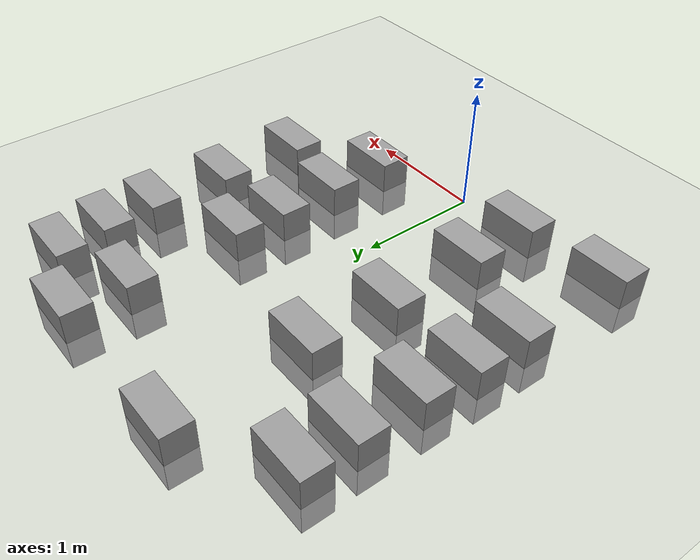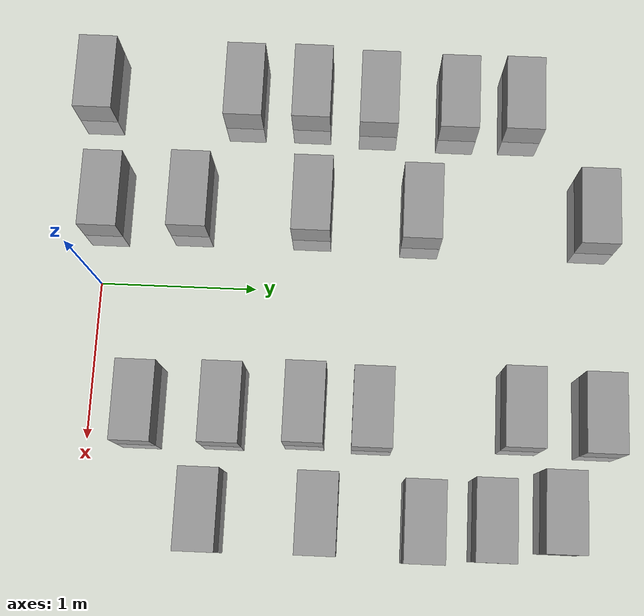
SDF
<sdf version="1.7">
 <world name="default">
  <model name="ground_plane">
   <static>1</static>
   <link name="link">
    <collision name="collision">
     <geometry><plane><normal>0 0 1</normal><size>100 100</size></plane></geometry>
     <surface>
      <contact><collide_bitmask>65535</collide_bitmask></contact>
      <friction><ode><mu>100</mu><mu2>50</mu2></ode></friction>
     </surface>
    </collision>
    <visual name="visual">
     <cast_shadows>0</cast_shadows>
     <geometry><plane><normal>0 0 1</normal><size>100 100</size></plane></geometry>
     <material>
      <script><uri>file://media/materials/scripts/gazebo.material</uri><name>Gazebo/Grey</name></script>
     </material>
    </visual>
   </link>
  </model>
  <model name="box_race_car_clone_20_clone_2">
   <link name="link">
    <inertial>
     <mass>10</mass>
     <inertia>
      <ixx>0.260417</ixx>
      <ixy>0</ixy>
      <ixz>0</ixz>
      <iyy>0.416667</iyy>
      <iyz>0</iyz>
      <izz>0.260417</izz>
     </inertia>
    </inertial>
    <visual name="visual">
     <geometry><box><size>0.5 0.25 0.5</size></box></geometry>
     <material>
      <script><name>Gazebo/Grey</name><uri>file://media/materials/scripts/gazebo.material</uri></script>
      <shader type="pixel"><normal_map>__default__</normal_map></shader>
      <ambient>0.3 0.3 0.3 1</ambient>
      <diffuse>0.7 0.7 0.7 1</diffuse>
      <specular>0.01 0.01 0.01 1</specular>
      <emissive>0 0 0 1</emissive>
     </material>
    </visual>
    <collision name="collision">
     <geometry><box><size>0.5 0.25 0.5</size></box></geometry>
     <surface>
      <friction>
       <ode><mu>1</mu><mu2>1</mu2><fdir1>0 0 0</fdir1><slip1>0</slip1><slip2>0</slip2></ode>
       <torsional>
        <coefficient>1</coefficient>
        <patch_radius>0</patch_radius>
        <surface_radius>0</surface_radius>
        <use_patch_radius>1</use_patch_radius>
        <ode><slip>0</slip></ode>
       </torsional>
      </friction>
      <bounce><restitution_coefficient>0</restitution_coefficient><threshold>1e+06</threshold></bounce>
      <contact>
       <collide_without_contact>0</collide_without_contact>
       <collide_without_contact_bitmask>1</collide_without_contact_bitmask>
       <collide_bitmask>1</collide_bitmask>
       <ode>
        <soft_cfm>0</soft_cfm>
        <soft_erp>0.2</soft_erp>
        <kp>1e+13</kp>
        <kd>1</kd>
        <max_vel>0.01</max_vel>
        <min_depth>0</min_depth>
       </ode>
       <bullet>
        <split_impulse>1</split_impulse>
        <split_impulse_penetration_threshold>-0.01</split_impulse_penetration_threshold>
        <soft_cfm>0</soft_cfm>
        <soft_erp>0.2</soft_erp>
        <kp>1e+13</kp>
        <kd>1</kd>
       </bullet>
      </contact>
     </surface>
    </collision>
   </link>
   <static>0</static>
   <pose>-0.568914 -0.016452 0 0 -0 0</pose>
  </model>
  <model name="box_race_car_clone_20_clone_3">
   <link name="link">
    <inertial>
     <mass>10</mass>
     <inertia>
      <ixx>0.260417</ixx>
      <ixy>0</ixy>
      <ixz>0</ixz>
      <iyy>0.416667</iyy>
      <iyz>0</iyz>
      <izz>0.260417</izz>
     </inertia>
    </inertial>
    <visual name="visual">
     <geometry><box><size>0.5 0.25 0.5</size></box></geometry>
     <material>
      <script><name>Gazebo/Grey</name><uri>file://media/materials/scripts/gazebo.material</uri></script>
      <shader type="pixel"><normal_map>__default__</normal_map></shader>
      <ambient>0.3 0.3 0.3 1</ambient>
      <diffuse>0.7 0.7 0.7 1</diffuse>
      <specular>0.01 0.01 0.01 1</specular>
      <emissive>0 0 0 1</emissive>
     </material>
    </visual>
    <collision name="collision">
     <geometry><box><size>0.5 0.25 0.5</size></box></geometry>
     <surface>
      <friction>
       <ode><mu>1</mu><mu2>1</mu2><fdir1>0 0 0</fdir1><slip1>0</slip1><slip2>0</slip2></ode>
       <torsional>
        <coefficient>1</coefficient>
        <patch_radius>0</patch_radius>
        <surface_radius>0</surface_radius>
        <use_patch_radius>1</use_patch_radius>
        <ode><slip>0</slip></ode>
       </torsional>
      </friction>
      <bounce><restitution_coefficient>0</restitution_coefficient><threshold>1e+06</threshold></bounce>
      <contact>
       <collide_without_contact>0</collide_without_contact>
       <collide_without_contact_bitmask>1</collide_without_contact_bitmask>
       <collide_bitmask>1</collide_bitmask>
       <ode>
        <soft_cfm>0</soft_cfm>
        <soft_erp>0.2</soft_erp>
        <kp>1e+13</kp>
        <kd>1</kd>
        <max_vel>0.01</max_vel>
        <min_depth>0</min_depth>
       </ode>
       <bullet>
        <split_impulse>1</split_impulse>
        <split_impulse_penetration_threshold>-0.01</split_impulse_penetration_threshold>
        <soft_cfm>0</soft_cfm>
        <soft_erp>0.2</soft_erp>
        <kp>1e+13</kp>
        <kd>1</kd>
       </bullet>
      </contact>
     </surface>
    </collision>
   </link>
   <static>0</static>
   <pose>-0.590353 0.546629 0 0 -0 0</pose>
  </model>
  <model name="box_race_car_clone_20_clone_4">
   <link name="link">
    <inertial>
     <mass>10</mass>
     <inertia>
      <ixx>0.260417</ixx>
      <ixy>0</ixy>
      <ixz>0</ixz>
      <iyy>0.416667</iyy>
      <iyz>0</iyz>
      <izz>0.260417</izz>
     </inertia>
    </inertial>
    <visual name="visual">
     <geometry><box><size>0.5 0.25 0.5</size></box></geometry>
     <material>
      <script><name>Gazebo/Grey</name><uri>file://media/materials/scripts/gazebo.material</uri></script>
      <shader type="pixel"><normal_map>__default__</normal_map></shader>
      <ambient>0.3 0.3 0.3 1</ambient>
      <diffuse>0.7 0.7 0.7 1</diffuse>
      <specular>0.01 0.01 0.01 1</specular>
      <emissive>0 0 0 1</emissive>
     </material>
    </visual>
    <collision name="collision">
     <geometry><box><size>0.5 0.25 0.5</size></box></geometry>
     <surface>
      <friction>
       <ode><mu>1</mu><mu2>1</mu2><fdir1>0 0 0</fdir1><slip1>0</slip1><slip2>0</slip2></ode>
       <torsional>
        <coefficient>1</coefficient>
        <patch_radius>0</patch_radius>
        <surface_radius>0</surface_radius>
        <use_patch_radius>1</use_patch_radius>
        <ode><slip>0</slip></ode>
       </torsional>
      </friction>
      <bounce><restitution_coefficient>0</restitution_coefficient><threshold>1e+06</threshold></bounce>
      <contact>
       <collide_without_contact>0</collide_without_contact>
       <collide_without_contact_bitmask>1</collide_without_contact_bitmask>
       <collide_bitmask>1</collide_bitmask>
       <ode>
        <soft_cfm>0</soft_cfm>
        <soft_erp>0.2</soft_erp>
        <kp>1e+13</kp>
        <kd>1</kd>
        <max_vel>0.01</max_vel>
        <min_depth>0</min_depth>
       </ode>
       <bullet>
        <split_impulse>1</split_impulse>
        <split_impulse_penetration_threshold>-0.01</split_impulse_penetration_threshold>
        <soft_cfm>0</soft_cfm>
        <soft_erp>0.2</soft_erp>
        <kp>1e+13</kp>
        <kd>1</kd>
       </bullet>
      </contact>
     </surface>
    </collision>
   </link>
   <static>0</static>
   <pose>-0.594673 1.33607 0 0 -0 0</pose>
  </model>
  <model name="box_race_car_clone_20_clone_5">
   <link name="link">
    <inertial>
     <mass>10</mass>
     <inertia>
      <ixx>0.260417</ixx>
      <ixy>0</ixy>
      <ixz>0</ixz>
      <iyy>0.416667</iyy>
      <iyz>0</iyz>
      <izz>0.260417</izz>
     </inertia>
    </inertial>
    <visual name="visual">
     <geometry><box><size>0.5 0.25 0.5</size></box></geometry>
     <material>
      <script><name>Gazebo/Grey</name><uri>file://media/materials/scripts/gazebo.material</uri></script>
      <shader type="pixel"><normal_map>__default__</normal_map></shader>
      <ambient>0.3 0.3 0.3 1</ambient>
      <diffuse>0.7 0.7 0.7 1</diffuse>
      <specular>0.01 0.01 0.01 1</specular>
      <emissive>0 0 0 1</emissive>
     </material>
    </visual>
    <collision name="collision">
     <geometry><box><size>0.5 0.25 0.5</size></box></geometry>
     <surface>
      <friction>
       <ode><mu>1</mu><mu2>1</mu2><fdir1>0 0 0</fdir1><slip1>0</slip1><slip2>0</slip2></ode>
       <torsional>
        <coefficient>1</coefficient>
        <patch_radius>0</patch_radius>
        <surface_radius>0</surface_radius>
        <use_patch_radius>1</use_patch_radius>
        <ode><slip>0</slip></ode>
       </torsional>
      </friction>
      <bounce><restitution_coefficient>0</restitution_coefficient><threshold>1e+06</threshold></bounce>
      <contact>
       <collide_without_contact>0</collide_without_contact>
       <collide_without_contact_bitmask>1</collide_without_contact_bitmask>
       <collide_bitmask>1</collide_bitmask>
       <ode>
        <soft_cfm>0</soft_cfm>
        <soft_erp>0.2</soft_erp>
        <kp>1e+13</kp>
        <kd>1</kd>
        <max_vel>0.01</max_vel>
        <min_depth>0</min_depth>
       </ode>
       <bullet>
        <split_impulse>1</split_impulse>
        <split_impulse_penetration_threshold>-0.01</split_impulse_penetration_threshold>
        <soft_cfm>0</soft_cfm>
        <soft_erp>0.2</soft_erp>
        <kp>1e+13</kp>
        <kd>1</kd>
       </bullet>
      </contact>
     </surface>
    </collision>
   </link>
   <static>0</static>
   <pose>-0.571957 2.04573 0 0 -0 0</pose>
  </model>
  <model name="box_race_car_clone_20_clone_6">
   <link name="link">
    <inertial>
     <mass>10</mass>
     <inertia>
      <ixx>0.260417</ixx>
      <ixy>0</ixy>
      <ixz>0</ixz>
      <iyy>0.416667</iyy>
      <iyz>0</iyz>
      <izz>0.260417</izz>
     </inertia>
    </inertial>
    <visual name="visual">
     <geometry><box><size>0.5 0.25 0.5</size></box></geometry>
     <material>
      <script><name>Gazebo/Grey</name><uri>file://media/materials/scripts/gazebo.material</uri></script>
      <shader type="pixel"><normal_map>__default__</normal_map></shader>
      <ambient>0.3 0.3 0.3 1</ambient>
      <diffuse>0.7 0.7 0.7 1</diffuse>
      <specular>0.01 0.01 0.01 1</specular>
      <emissive>0 0 0 1</emissive>
     </material>
    </visual>
    <collision name="collision">
     <geometry><box><size>0.5 0.25 0.5</size></box></geometry>
     <surface>
      <friction>
       <ode><mu>1</mu><mu2>1</mu2><fdir1>0 0 0</fdir1><slip1>0</slip1><slip2>0</slip2></ode>
       <torsional>
        <coefficient>1</coefficient>
        <patch_radius>0</patch_radius>
        <surface_radius>0</surface_radius>
        <use_patch_radius>1</use_patch_radius>
        <ode><slip>0</slip></ode>
       </torsional>
      </friction>
      <bounce><restitution_coefficient>0</restitution_coefficient><threshold>1e+06</threshold></bounce>
      <contact>
       <collide_without_contact>0</collide_without_contact>
       <collide_without_contact_bitmask>1</collide_without_contact_bitmask>
       <collide_bitmask>1</collide_bitmask>
       <ode>
        <soft_cfm>0</soft_cfm>
        <soft_erp>0.2</soft_erp>
        <kp>1e+13</kp>
        <kd>1</kd>
        <max_vel>0.01</max_vel>
        <min_depth>0</min_depth>
       </ode>
       <bullet>
        <split_impulse>1</split_impulse>
        <split_impulse_penetration_threshold>-0.01</split_impulse_penetration_threshold>
        <soft_cfm>0</soft_cfm>
        <soft_erp>0.2</soft_erp>
        <kp>1e+13</kp>
        <kd>1</kd>
       </bullet>
      </contact>
     </surface>
    </collision>
   </link>
   <static>0</static>
   <pose>-0.585268 3.17093 0 0 -0 0</pose>
  </model>
  <model name="box_race_car_clone_20_clone_7">
   <link name="link">
    <inertial>
     <mass>10</mass>
     <inertia>
      <ixx>0.260417</ixx>
      <ixy>0</ixy>
      <ixz>0</ixz>
      <iyy>0.416667</iyy>
      <iyz>0</iyz>
      <izz>0.260417</izz>
     </inertia>
    </inertial>
    <visual name="visual">
     <geometry><box><size>0.5 0.25 0.5</size></box></geometry>
     <material>
      <script><name>Gazebo/Grey</name><uri>file://media/materials/scripts/gazebo.material</uri></script>
      <shader type="pixel"><normal_map>__default__</normal_map></shader>
      <ambient>0.3 0.3 0.3 1</ambient>
      <diffuse>0.7 0.7 0.7 1</diffuse>
      <specular>0.01 0.01 0.01 1</specular>
      <emissive>0 0 0 1</emissive>
     </material>
    </visual>
    <collision name="collision">
     <geometry><box><size>0.5 0.25 0.5</size></box></geometry>
     <surface>
      <friction>
       <ode><mu>1</mu><mu2>1</mu2><fdir1>0 0 0</fdir1><slip1>0</slip1><slip2>0</slip2></ode>
       <torsional>
        <coefficient>1</coefficient>
        <patch_radius>0</patch_radius>
        <surface_radius>0</surface_radius>
        <use_patch_radius>1</use_patch_radius>
        <ode><slip>0</slip></ode>
       </torsional>
      </friction>
      <bounce><restitution_coefficient>0</restitution_coefficient><threshold>1e+06</threshold></bounce>
      <contact>
       <collide_without_contact>0</collide_without_contact>
       <collide_without_contact_bitmask>1</collide_without_contact_bitmask>
       <collide_bitmask>1</collide_bitmask>
       <ode>
        <soft_cfm>0</soft_cfm>
        <soft_erp>0.2</soft_erp>
        <kp>1e+13</kp>
        <kd>1</kd>
        <max_vel>0.01</max_vel>
        <min_depth>0</min_depth>
       </ode>
       <bullet>
        <split_impulse>1</split_impulse>
        <split_impulse_penetration_threshold>-0.01</split_impulse_penetration_threshold>
        <soft_cfm>0</soft_cfm>
        <soft_erp>0.2</soft_erp>
        <kp>1e+13</kp>
        <kd>1</kd>
       </bullet>
      </contact>
     </surface>
    </collision>
   </link>
   <static>0</static>
   <pose>-1.33065 2.69144 0 0 -0 0</pose>
  </model>
  <model name="box_race_car_clone_20_clone_8">
   <link name="link">
    <inertial>
     <mass>10</mass>
     <inertia>
      <ixx>0.260417</ixx>
      <ixy>0</ixy>
      <ixz>0</ixz>
      <iyy>0.416667</iyy>
      <iyz>0</iyz>
      <izz>0.260417</izz>
     </inertia>
    </inertial>
    <visual name="visual">
     <geometry><box><size>0.5 0.25 0.5</size></box></geometry>
     <material>
      <script><name>Gazebo/Grey</name><uri>file://media/materials/scripts/gazebo.material</uri></script>
      <shader type="pixel"><normal_map>__default__</normal_map></shader>
      <ambient>0.3 0.3 0.3 1</ambient>
      <diffuse>0.7 0.7 0.7 1</diffuse>
      <specular>0.01 0.01 0.01 1</specular>
      <emissive>0 0 0 1</emissive>
     </material>
    </visual>
    <collision name="collision">
     <geometry><box><size>0.5 0.25 0.5</size></box></geometry>
     <surface>
      <friction>
       <ode><mu>1</mu><mu2>1</mu2><fdir1>0 0 0</fdir1><slip1>0</slip1><slip2>0</slip2></ode>
       <torsional>
        <coefficient>1</coefficient>
        <patch_radius>0</patch_radius>
        <surface_radius>0</surface_radius>
        <use_patch_radius>1</use_patch_radius>
        <ode><slip>0</slip></ode>
       </torsional>
      </friction>
      <bounce><restitution_coefficient>0</restitution_coefficient><threshold>1e+06</threshold></bounce>
      <contact>
       <collide_without_contact>0</collide_without_contact>
       <collide_without_contact_bitmask>1</collide_without_contact_bitmask>
       <collide_bitmask>1</collide_bitmask>
       <ode>
        <soft_cfm>0</soft_cfm>
        <soft_erp>0.2</soft_erp>
        <kp>1e+13</kp>
        <kd>1</kd>
        <max_vel>0.01</max_vel>
        <min_depth>0</min_depth>
       </ode>
       <bullet>
        <split_impulse>1</split_impulse>
        <split_impulse_penetration_threshold>-0.01</split_impulse_penetration_threshold>
        <soft_cfm>0</soft_cfm>
        <soft_erp>0.2</soft_erp>
        <kp>1e+13</kp>
        <kd>1</kd>
       </bullet>
      </contact>
     </surface>
    </collision>
   </link>
   <static>0</static>
   <pose>-1.3245 2.26701 0 0 -0 0</pose>
  </model>
  <model name="box_race_car_clone_20_clone_9">
   <link name="link">
    <inertial>
     <mass>10</mass>
     <inertia>
      <ixx>0.260417</ixx>
      <ixy>0</ixy>
      <ixz>0</ixz>
      <iyy>0.416667</iyy>
      <iyz>0</iyz>
      <izz>0.260417</izz>
     </inertia>
    </inertial>
    <visual name="visual">
     <geometry><box><size>0.5 0.25 0.5</size></box></geometry>
     <material>
      <script><name>Gazebo/Grey</name><uri>file://media/materials/scripts/gazebo.material</uri></script>
      <shader type="pixel"><normal_map>__default__</normal_map></shader>
      <ambient>0.3 0.3 0.3 1</ambient>
      <diffuse>0.7 0.7 0.7 1</diffuse>
      <specular>0.01 0.01 0.01 1</specular>
      <emissive>0 0 0 1</emissive>
     </material>
    </visual>
    <collision name="collision">
     <geometry><box><size>0.5 0.25 0.5</size></box></geometry>
     <surface>
      <friction>
       <ode><mu>1</mu><mu2>1</mu2><fdir1>0 0 0</fdir1><slip1>0</slip1><slip2>0</slip2></ode>
       <torsional>
        <coefficient>1</coefficient>
        <patch_radius>0</patch_radius>
        <surface_radius>0</surface_radius>
        <use_patch_radius>1</use_patch_radius>
        <ode><slip>0</slip></ode>
       </torsional>
      </friction>
      <bounce><restitution_coefficient>0</restitution_coefficient><threshold>1e+06</threshold></bounce>
      <contact>
       <collide_without_contact>0</collide_without_contact>
       <collide_without_contact_bitmask>1</collide_without_contact_bitmask>
       <collide_bitmask>1</collide_bitmask>
       <ode>
        <soft_cfm>0</soft_cfm>
        <soft_erp>0.2</soft_erp>
        <kp>1e+13</kp>
        <kd>1</kd>
        <max_vel>0.01</max_vel>
        <min_depth>0</min_depth>
       </ode>
       <bullet>
        <split_impulse>1</split_impulse>
        <split_impulse_penetration_threshold>-0.01</split_impulse_penetration_threshold>
        <soft_cfm>0</soft_cfm>
        <soft_erp>0.2</soft_erp>
        <kp>1e+13</kp>
        <kd>1</kd>
       </bullet>
      </contact>
     </surface>
    </collision>
   </link>
   <static>0</static>
   <pose>-1.33137 1.74434 0 0 -0 0</pose>
  </model>
  <model name="box_race_car_clone_20_clone_10">
   <link name="link">
    <inertial>
     <mass>10</mass>
     <inertia>
      <ixx>0.260417</ixx>
      <ixy>0</ixy>
      <ixz>0</ixz>
      <iyy>0.416667</iyy>
      <iyz>0</iyz>
      <izz>0.260417</izz>
     </inertia>
    </inertial>
    <visual name="visual">
     <geometry><box><size>0.5 0.25 0.5</size></box></geometry>
     <material>
      <script><name>Gazebo/Grey</name><uri>file://media/materials/scripts/gazebo.material</uri></script>
      <shader type="pixel"><normal_map>__default__</normal_map></shader>
      <ambient>0.3 0.3 0.3 1</ambient>
      <diffuse>0.7 0.7 0.7 1</diffuse>
      <specular>0.01 0.01 0.01 1</specular>
      <emissive>0 0 0 1</emissive>
     </material>
    </visual>
    <collision name="collision">
     <geometry><box><size>0.5 0.25 0.5</size></box></geometry>
     <surface>
      <friction>
       <ode><mu>1</mu><mu2>1</mu2><fdir1>0 0 0</fdir1><slip1>0</slip1><slip2>0</slip2></ode>
       <torsional>
        <coefficient>1</coefficient>
        <patch_radius>0</patch_radius>
        <surface_radius>0</surface_radius>
        <use_patch_radius>1</use_patch_radius>
        <ode><slip>0</slip></ode>
       </torsional>
      </friction>
      <bounce><restitution_coefficient>0</restitution_coefficient><threshold>1e+06</threshold></bounce>
      <contact>
       <collide_without_contact>0</collide_without_contact>
       <collide_without_contact_bitmask>1</collide_without_contact_bitmask>
       <collide_bitmask>1</collide_bitmask>
       <ode>
        <soft_cfm>0</soft_cfm>
        <soft_erp>0.2</soft_erp>
        <kp>1e+13</kp>
        <kd>1</kd>
        <max_vel>0.01</max_vel>
        <min_depth>0</min_depth>
       </ode>
       <bullet>
        <split_impulse>1</split_impulse>
        <split_impulse_penetration_threshold>-0.01</split_impulse_penetration_threshold>
        <soft_cfm>0</soft_cfm>
        <soft_erp>0.2</soft_erp>
        <kp>1e+13</kp>
        <kd>1</kd>
       </bullet>
      </contact>
     </surface>
    </collision>
   </link>
   <static>0</static>
   <pose>-1.35542 1.30114 0 0 -0 0</pose>
  </model>
  <model name="box_race_car_clone_20_clone_11">
   <link name="link">
    <inertial>
     <mass>10</mass>
     <inertia>
      <ixx>0.260417</ixx>
      <ixy>0</ixy>
      <ixz>0</ixz>
      <iyy>0.416667</iyy>
      <iyz>0</iyz>
      <izz>0.260417</izz>
     </inertia>
    </inertial>
    <visual name="visual">
     <geometry><box><size>0.5 0.25 0.5</size></box></geometry>
     <material>
      <script><name>Gazebo/Grey</name><uri>file://media/materials/scripts/gazebo.material</uri></script>
      <shader type="pixel"><normal_map>__default__</normal_map></shader>
      <ambient>0.3 0.3 0.3 1</ambient>
      <diffuse>0.7 0.7 0.7 1</diffuse>
      <specular>0.01 0.01 0.01 1</specular>
      <emissive>0 0 0 1</emissive>
     </material>
    </visual>
    <collision name="collision">
     <geometry><box><size>0.5 0.25 0.5</size></box></geometry>
     <surface>
      <friction>
       <ode><mu>1</mu><mu2>1</mu2><fdir1>0 0 0</fdir1><slip1>0</slip1><slip2>0</slip2></ode>
       <torsional>
        <coefficient>1</coefficient>
        <patch_radius>0</patch_radius>
        <surface_radius>0</surface_radius>
        <use_patch_radius>1</use_patch_radius>
        <ode><slip>0</slip></ode>
       </torsional>
      </friction>
      <bounce><restitution_coefficient>0</restitution_coefficient><threshold>1e+06</threshold></bounce>
      <contact>
       <collide_without_contact>0</collide_without_contact>
       <collide_without_contact_bitmask>1</collide_without_contact_bitmask>
       <collide_bitmask>1</collide_bitmask>
       <ode>
        <soft_cfm>0</soft_cfm>
        <soft_erp>0.2</soft_erp>
        <kp>1e+13</kp>
        <kd>1</kd>
        <max_vel>0.01</max_vel>
        <min_depth>0</min_depth>
       </ode>
       <bullet>
        <split_impulse>1</split_impulse>
        <split_impulse_penetration_threshold>-0.01</split_impulse_penetration_threshold>
        <soft_cfm>0</soft_cfm>
        <soft_erp>0.2</soft_erp>
        <kp>1e+13</kp>
        <kd>1</kd>
       </bullet>
      </contact>
     </surface>
    </collision>
   </link>
   <static>0</static>
   <pose>-1.34991 0.857 0 0 -0 0</pose>
  </model>
  <model name="box_race_car_clone_20_clone_12">
   <link name="link">
    <inertial>
     <mass>10</mass>
     <inertia>
      <ixx>0.260417</ixx>
      <ixy>0</ixy>
      <ixz>0</ixz>
      <iyy>0.416667</iyy>
      <iyz>0</iyz>
      <izz>0.260417</izz>
     </inertia>
    </inertial>
    <visual name="visual">
     <geometry><box><size>0.5 0.25 0.5</size></box></geometry>
     <material>
      <script><name>Gazebo/Grey</name><uri>file://media/materials/scripts/gazebo.material</uri></script>
      <shader type="pixel"><normal_map>__default__</normal_map></shader>
      <ambient>0.3 0.3 0.3 1</ambient>
      <diffuse>0.7 0.7 0.7 1</diffuse>
      <specular>0.01 0.01 0.01 1</specular>
      <emissive>0 0 0 1</emissive>
     </material>
    </visual>
    <collision name="collision">
     <geometry><box><size>0.5 0.25 0.5</size></box></geometry>
     <surface>
      <friction>
       <ode><mu>1</mu><mu2>1</mu2><fdir1>0 0 0</fdir1><slip1>0</slip1><slip2>0</slip2></ode>
       <torsional>
        <coefficient>1</coefficient>
        <patch_radius>0</patch_radius>
        <surface_radius>0</surface_radius>
        <use_patch_radius>1</use_patch_radius>
        <ode><slip>0</slip></ode>
       </torsional>
      </friction>
      <bounce><restitution_coefficient>0</restitution_coefficient><threshold>1e+06</threshold></bounce>
      <contact>
       <collide_without_contact>0</collide_without_contact>
       <collide_without_contact_bitmask>1</collide_without_contact_bitmask>
       <collide_bitmask>1</collide_bitmask>
       <ode>
        <soft_cfm>0</soft_cfm>
        <soft_erp>0.2</soft_erp>
        <kp>1e+13</kp>
        <kd>1</kd>
        <max_vel>0.01</max_vel>
        <min_depth>0</min_depth>
       </ode>
       <bullet>
        <split_impulse>1</split_impulse>
        <split_impulse_penetration_threshold>-0.01</split_impulse_penetration_threshold>
        <soft_cfm>0</soft_cfm>
        <soft_erp>0.2</soft_erp>
        <kp>1e+13</kp>
        <kd>1</kd>
       </bullet>
      </contact>
     </surface>
    </collision>
   </link>
   <static>0</static>
   <pose>-1.36143 -0.119349 0 0 -0 0</pose>
  </model>
  <model name="box_race_car_clone_20_clone_23">
   <link name="link">
    <inertial>
     <mass>10</mass>
     <inertia>
      <ixx>0.260417</ixx>
      <ixy>0</ixy>
      <ixz>0</ixz>
      <iyy>0.416667</iyy>
      <iyz>0</iyz>
      <izz>0.260417</izz>
     </inertia>
    </inertial>
    <visual name="visual">
     <geometry><box><size>0.5 0.25 0.5</size></box></geometry>
     <material>
      <script><name>Gazebo/Grey</name><uri>file://media/materials/scripts/gazebo.material</uri></script>
      <shader type="pixel"><normal_map>__default__</normal_map></shader>
      <ambient>0.3 0.3 0.3 1</ambient>
      <diffuse>0.7 0.7 0.7 1</diffuse>
      <specular>0.01 0.01 0.01 1</specular>
      <emissive>0 0 0 1</emissive>
     </material>
    </visual>
    <collision name="collision">
     <geometry><box><size>0.5 0.25 0.5</size></box></geometry>
     <surface>
      <friction>
       <ode><mu>1</mu><mu2>1</mu2><fdir1>0 0 0</fdir1><slip1>0</slip1><slip2>0</slip2></ode>
       <torsional>
        <coefficient>1</coefficient>
        <patch_radius>0</patch_radius>
        <surface_radius>0</surface_radius>
        <use_patch_radius>1</use_patch_radius>
        <ode><slip>0</slip></ode>
       </torsional>
      </friction>
      <bounce><restitution_coefficient>0</restitution_coefficient><threshold>1e+06</threshold></bounce>
      <contact>
       <collide_without_contact>0</collide_without_contact>
       <collide_without_contact_bitmask>1</collide_without_contact_bitmask>
       <collide_bitmask>1</collide_bitmask>
       <ode>
        <soft_cfm>0</soft_cfm>
        <soft_erp>0.2</soft_erp>
        <kp>1e+13</kp>
        <kd>1</kd>
        <max_vel>0.01</max_vel>
        <min_depth>0</min_depth>
       </ode>
       <bullet>
        <split_impulse>1</split_impulse>
        <split_impulse_penetration_threshold>-0.01</split_impulse_penetration_threshold>
        <soft_cfm>0</soft_cfm>
        <soft_erp>0.2</soft_erp>
        <kp>1e+13</kp>
        <kd>1</kd>
       </bullet>
      </contact>
     </surface>
    </collision>
   </link>
   <static>0</static>
   <pose>0.773447 0.305808 0 0 -0 0</pose>
  </model>
  <model name="box_race_car_clone_20_clone_24">
   <link name="link">
    <inertial>
     <mass>10</mass>
     <inertia>
      <ixx>0.260417</ixx>
      <ixy>0</ixy>
      <ixz>0</ixz>
      <iyy>0.416667</iyy>
      <iyz>0</iyz>
      <izz>0.260417</izz>
     </inertia>
    </inertial>
    <visual name="visual">
     <geometry><box><size>0.5 0.25 0.5</size></box></geometry>
     <material>
      <script><name>Gazebo/Grey</name><uri>file://media/materials/scripts/gazebo.material</uri></script>
      <shader type="pixel"><normal_map>__default__</normal_map></shader>
      <ambient>0.3 0.3 0.3 1</ambient>
      <diffuse>0.7 0.7 0.7 1</diffuse>
      <specular>0.01 0.01 0.01 1</specular>
      <emissive>0 0 0 1</emissive>
     </material>
    </visual>
    <collision name="collision">
     <geometry><box><size>0.5 0.25 0.5</size></box></geometry>
     <surface>
      <friction>
       <ode><mu>1</mu><mu2>1</mu2><fdir1>0 0 0</fdir1><slip1>0</slip1><slip2>0</slip2></ode>
       <torsional>
        <coefficient>1</coefficient>
        <patch_radius>0</patch_radius>
        <surface_radius>0</surface_radius>
        <use_patch_radius>1</use_patch_radius>
        <ode><slip>0</slip></ode>
       </torsional>
      </friction>
      <bounce><restitution_coefficient>0</restitution_coefficient><threshold>1e+06</threshold></bounce>
      <contact>
       <collide_without_contact>0</collide_without_contact>
       <collide_without_contact_bitmask>1</collide_without_contact_bitmask>
       <collide_bitmask>1</collide_bitmask>
       <ode>
        <soft_cfm>0</soft_cfm>
        <soft_erp>0.2</soft_erp>
        <kp>1e+13</kp>
        <kd>1</kd>
        <max_vel>0.01</max_vel>
        <min_depth>0</min_depth>
       </ode>
       <bullet>
        <split_impulse>1</split_impulse>
        <split_impulse_penetration_threshold>-0.01</split_impulse_penetration_threshold>
        <soft_cfm>0</soft_cfm>
        <soft_erp>0.2</soft_erp>
        <kp>1e+13</kp>
        <kd>1</kd>
       </bullet>
      </contact>
     </surface>
    </collision>
   </link>
   <static>0</static>
   <pose>0.760915 0.839055 0 0 -0 0</pose>
  </model>
  <model name="box_race_car_clone_20_clone_25">
   <link name="link">
    <inertial>
     <mass>10</mass>
     <inertia>
      <ixx>0.260417</ixx>
      <ixy>0</ixy>
      <ixz>0</ixz>
      <iyy>0.416667</iyy>
      <iyz>0</iyz>
      <izz>0.260417</izz>
     </inertia>
    </inertial>
    <visual name="visual">
     <geometry><box><size>0.5 0.25 0.5</size></box></geometry>
     <material>
      <script><name>Gazebo/Grey</name><uri>file://media/materials/scripts/gazebo.material</uri></script>
      <shader type="pixel"><normal_map>__default__</normal_map></shader>
      <ambient>0.3 0.3 0.3 1</ambient>
      <diffuse>0.7 0.7 0.7 1</diffuse>
      <specular>0.01 0.01 0.01 1</specular>
      <emissive>0 0 0 1</emissive>
     </material>
    </visual>
    <collision name="collision">
     <geometry><box><size>0.5 0.25 0.5</size></box></geometry>
     <surface>
      <friction>
       <ode><mu>1</mu><mu2>1</mu2><fdir1>0 0 0</fdir1><slip1>0</slip1><slip2>0</slip2></ode>
       <torsional>
        <coefficient>1</coefficient>
        <patch_radius>0</patch_radius>
        <surface_radius>0</surface_radius>
        <use_patch_radius>1</use_patch_radius>
        <ode><slip>0</slip></ode>
       </torsional>
      </friction>
      <bounce><restitution_coefficient>0</restitution_coefficient><threshold>1e+06</threshold></bounce>
      <contact>
       <collide_without_contact>0</collide_without_contact>
       <collide_without_contact_bitmask>1</collide_without_contact_bitmask>
       <collide_bitmask>1</collide_bitmask>
       <ode>
        <soft_cfm>0</soft_cfm>
        <soft_erp>0.2</soft_erp>
        <kp>1e+13</kp>
        <kd>1</kd>
        <max_vel>0.01</max_vel>
        <min_depth>0</min_depth>
       </ode>
       <bullet>
        <split_impulse>1</split_impulse>
        <split_impulse_penetration_threshold>-0.01</split_impulse_penetration_threshold>
        <soft_cfm>0</soft_cfm>
        <soft_erp>0.2</soft_erp>
        <kp>1e+13</kp>
        <kd>1</kd>
       </bullet>
      </contact>
     </surface>
    </collision>
   </link>
   <static>0</static>
   <pose>0.737894 1.3529 0 0 -0 0</pose>
  </model>
  <model name="box_race_car_clone_20_clone_26">
   <link name="link">
    <inertial>
     <mass>10</mass>
     <inertia>
      <ixx>0.260417</ixx>
      <ixy>0</ixy>
      <ixz>0</ixz>
      <iyy>0.416667</iyy>
      <iyz>0</iyz>
      <izz>0.260417</izz>
     </inertia>
    </inertial>
    <visual name="visual">
     <geometry><box><size>0.5 0.25 0.5</size></box></geometry>
     <material>
      <script><name>Gazebo/Grey</name><uri>file://media/materials/scripts/gazebo.material</uri></script>
      <shader type="pixel"><normal_map>__default__</normal_map></shader>
      <ambient>0.3 0.3 0.3 1</ambient>
      <diffuse>0.7 0.7 0.7 1</diffuse>
      <specular>0.01 0.01 0.01 1</specular>
      <emissive>0 0 0 1</emissive>
     </material>
    </visual>
    <collision name="collision">
     <geometry><box><size>0.5 0.25 0.5</size></box></geometry>
     <surface>
      <friction>
       <ode><mu>1</mu><mu2>1</mu2><fdir1>0 0 0</fdir1><slip1>0</slip1><slip2>0</slip2></ode>
       <torsional>
        <coefficient>1</coefficient>
        <patch_radius>0</patch_radius>
        <surface_radius>0</surface_radius>
        <use_patch_radius>1</use_patch_radius>
        <ode><slip>0</slip></ode>
       </torsional>
      </friction>
      <bounce><restitution_coefficient>0</restitution_coefficient><threshold>1e+06</threshold></bounce>
      <contact>
       <collide_without_contact>0</collide_without_contact>
       <collide_without_contact_bitmask>1</collide_without_contact_bitmask>
       <collide_bitmask>1</collide_bitmask>
       <ode>
        <soft_cfm>0</soft_cfm>
        <soft_erp>0.2</soft_erp>
        <kp>1e+13</kp>
        <kd>1</kd>
        <max_vel>0.01</max_vel>
        <min_depth>0</min_depth>
       </ode>
       <bullet>
        <split_impulse>1</split_impulse>
        <split_impulse_penetration_threshold>-0.01</split_impulse_penetration_threshold>
        <soft_cfm>0</soft_cfm>
        <soft_erp>0.2</soft_erp>
        <kp>1e+13</kp>
        <kd>1</kd>
       </bullet>
      </contact>
     </surface>
    </collision>
   </link>
   <static>0</static>
   <pose>0.751464 1.77676 0 0 -0 0</pose>
  </model>
  <model name="box_race_car_clone_20_clone_27">
   <link name="link">
    <inertial>
     <mass>10</mass>
     <inertia>
      <ixx>0.260417</ixx>
      <ixy>0</ixy>
      <ixz>0</ixz>
      <iyy>0.416667</iyy>
      <iyz>0</iyz>
      <izz>0.260417</izz>
     </inertia>
    </inertial>
    <visual name="visual">
     <geometry><box><size>0.5 0.25 0.5</size></box></geometry>
     <material>
      <script><name>Gazebo/Grey</name><uri>file://media/materials/scripts/gazebo.material</uri></script>
      <shader type="pixel"><normal_map>__default__</normal_map></shader>
      <ambient>0.3 0.3 0.3 1</ambient>
      <diffuse>0.7 0.7 0.7 1</diffuse>
      <specular>0.01 0.01 0.01 1</specular>
      <emissive>0 0 0 1</emissive>
     </material>
    </visual>
    <collision name="collision">
     <geometry><box><size>0.5 0.25 0.5</size></box></geometry>
     <surface>
      <friction>
       <ode><mu>1</mu><mu2>1</mu2><fdir1>0 0 0</fdir1><slip1>0</slip1><slip2>0</slip2></ode>
       <torsional>
        <coefficient>1</coefficient>
        <patch_radius>0</patch_radius>
        <surface_radius>0</surface_radius>
        <use_patch_radius>1</use_patch_radius>
        <ode><slip>0</slip></ode>
       </torsional>
      </friction>
      <bounce><restitution_coefficient>0</restitution_coefficient><threshold>1e+06</threshold></bounce>
      <contact>
       <collide_without_contact>0</collide_without_contact>
       <collide_without_contact_bitmask>1</collide_without_contact_bitmask>
       <collide_bitmask>1</collide_bitmask>
       <ode>
        <soft_cfm>0</soft_cfm>
        <soft_erp>0.2</soft_erp>
        <kp>1e+13</kp>
        <kd>1</kd>
        <max_vel>0.01</max_vel>
        <min_depth>0</min_depth>
       </ode>
       <bullet>
        <split_impulse>1</split_impulse>
        <split_impulse_penetration_threshold>-0.01</split_impulse_penetration_threshold>
        <soft_cfm>0</soft_cfm>
        <soft_erp>0.2</soft_erp>
        <kp>1e+13</kp>
        <kd>1</kd>
       </bullet>
      </contact>
     </surface>
    </collision>
   </link>
   <static>0</static>
   <pose>0.712119 2.70554 0 0 -0 0</pose>
  </model>
  <model name="box_race_car_clone_20_clone_28">
   <link name="link">
    <inertial>
     <mass>10</mass>
     <inertia>
      <ixx>0.260417</ixx>
      <ixy>0</ixy>
      <ixz>0</ixz>
      <iyy>0.416667</iyy>
      <iyz>0</iyz>
      <izz>0.260417</izz>
     </inertia>
    </inertial>
    <visual name="visual">
     <geometry><box><size>0.5 0.25 0.5</size></box></geometry>
     <material>
      <script><name>Gazebo/Grey</name><uri>file://media/materials/scripts/gazebo.material</uri></script>
      <shader type="pixel"><normal_map>__default__</normal_map></shader>
      <ambient>0.3 0.3 0.3 1</ambient>
      <diffuse>0.7 0.7 0.7 1</diffuse>
      <specular>0.01 0.01 0.01 1</specular>
      <emissive>0 0 0 1</emissive>
     </material>
    </visual>
    <collision name="collision">
     <geometry><box><size>0.5 0.25 0.5</size></box></geometry>
     <surface>
      <friction>
       <ode><mu>1</mu><mu2>1</mu2><fdir1>0 0 0</fdir1><slip1>0</slip1><slip2>0</slip2></ode>
       <torsional>
        <coefficient>1</coefficient>
        <patch_radius>0</patch_radius>
        <surface_radius>0</surface_radius>
        <use_patch_radius>1</use_patch_radius>
        <ode><slip>0</slip></ode>
       </torsional>
      </friction>
      <bounce><restitution_coefficient>0</restitution_coefficient><threshold>1e+06</threshold></bounce>
      <contact>
       <collide_without_contact>0</collide_without_contact>
       <collide_without_contact_bitmask>1</collide_without_contact_bitmask>
       <collide_bitmask>1</collide_bitmask>
       <ode>
        <soft_cfm>0</soft_cfm>
        <soft_erp>0.2</soft_erp>
        <kp>1e+13</kp>
        <kd>1</kd>
        <max_vel>0.01</max_vel>
        <min_depth>0</min_depth>
       </ode>
       <bullet>
        <split_impulse>1</split_impulse>
        <split_impulse_penetration_threshold>-0.01</split_impulse_penetration_threshold>
        <soft_cfm>0</soft_cfm>
        <soft_erp>0.2</soft_erp>
        <kp>1e+13</kp>
        <kd>1</kd>
       </bullet>
      </contact>
     </surface>
    </collision>
   </link>
   <static>0</static>
   <pose>0.727896 3.1984 0 0 -0 0</pose>
  </model>
  <model name="box_race_car_clone_20_clone_29">
   <link name="link">
    <inertial>
     <mass>10</mass>
     <inertia>
      <ixx>0.260417</ixx>
      <ixy>0</ixy>
      <ixz>0</ixz>
      <iyy>0.416667</iyy>
      <iyz>0</iyz>
      <izz>0.260417</izz>
     </inertia>
    </inertial>
    <visual name="visual">
     <geometry><box><size>0.5 0.25 0.5</size></box></geometry>
     <material>
      <script><name>Gazebo/Grey</name><uri>file://media/materials/scripts/gazebo.material</uri></script>
      <shader type="pixel"><normal_map>__default__</normal_map></shader>
      <ambient>0.3 0.3 0.3 1</ambient>
      <diffuse>0.7 0.7 0.7 1</diffuse>
      <specular>0.01 0.01 0.01 1</specular>
      <emissive>0 0 0 1</emissive>
     </material>
    </visual>
    <collision name="collision">
     <geometry><box><size>0.5 0.25 0.5</size></box></geometry>
     <surface>
      <friction>
       <ode><mu>1</mu><mu2>1</mu2><fdir1>0 0 0</fdir1><slip1>0</slip1><slip2>0</slip2></ode>
       <torsional>
        <coefficient>1</coefficient>
        <patch_radius>0</patch_radius>
        <surface_radius>0</surface_radius>
        <use_patch_radius>1</use_patch_radius>
        <ode><slip>0</slip></ode>
       </torsional>
      </friction>
      <bounce><restitution_coefficient>0</restitution_coefficient><threshold>1e+06</threshold></bounce>
      <contact>
       <collide_without_contact>0</collide_without_contact>
       <collide_without_contact_bitmask>1</collide_without_contact_bitmask>
       <collide_bitmask>1</collide_bitmask>
       <ode>
        <soft_cfm>0</soft_cfm>
        <soft_erp>0.2</soft_erp>
        <kp>1e+13</kp>
        <kd>1</kd>
        <max_vel>0.01</max_vel>
        <min_depth>0</min_depth>
       </ode>
       <bullet>
        <split_impulse>1</split_impulse>
        <split_impulse_penetration_threshold>-0.01</split_impulse_penetration_threshold>
        <soft_cfm>0</soft_cfm>
        <soft_erp>0.2</soft_erp>
        <kp>1e+13</kp>
        <kd>1</kd>
       </bullet>
      </contact>
     </surface>
    </collision>
   </link>
   <static>0</static>
   <pose>1.33184 2.95224 0 0 -0 0</pose>
  </model>
  <model name="box_race_car_clone_20_clone_30">
   <link name="link">
    <inertial>
     <mass>10</mass>
     <inertia>
      <ixx>0.260417</ixx>
      <ixy>0</ixy>
      <ixz>0</ixz>
      <iyy>0.416667</iyy>
      <iyz>0</iyz>
      <izz>0.260417</izz>
     </inertia>
    </inertial>
    <visual name="visual">
     <geometry><box><size>0.5 0.25 0.5</size></box></geometry>
     <material>
      <script><name>Gazebo/Grey</name><uri>file://media/materials/scripts/gazebo.material</uri></script>
      <shader type="pixel"><normal_map>__default__</normal_map></shader>
      <ambient>0.3 0.3 0.3 1</ambient>
      <diffuse>0.7 0.7 0.7 1</diffuse>
      <specular>0.01 0.01 0.01 1</specular>
      <emissive>0 0 0 1</emissive>
     </material>
    </visual>
    <collision name="collision">
     <geometry><box><size>0.5 0.25 0.5</size></box></geometry>
     <surface>
      <friction>
       <ode><mu>1</mu><mu2>1</mu2><fdir1>0 0 0</fdir1><slip1>0</slip1><slip2>0</slip2></ode>
       <torsional>
        <coefficient>1</coefficient>
        <patch_radius>0</patch_radius>
        <surface_radius>0</surface_radius>
        <use_patch_radius>1</use_patch_radius>
        <ode><slip>0</slip></ode>
       </torsional>
      </friction>
      <bounce><restitution_coefficient>0</restitution_coefficient><threshold>1e+06</threshold></bounce>
      <contact>
       <collide_without_contact>0</collide_without_contact>
       <collide_without_contact_bitmask>1</collide_without_contact_bitmask>
       <collide_bitmask>1</collide_bitmask>
       <ode>
        <soft_cfm>0</soft_cfm>
        <soft_erp>0.2</soft_erp>
        <kp>1e+13</kp>
        <kd>1</kd>
        <max_vel>0.01</max_vel>
        <min_depth>0</min_depth>
       </ode>
       <bullet>
        <split_impulse>1</split_impulse>
        <split_impulse_penetration_threshold>-0.01</split_impulse_penetration_threshold>
        <soft_cfm>0</soft_cfm>
        <soft_erp>0.2</soft_erp>
        <kp>1e+13</kp>
        <kd>1</kd>
       </bullet>
      </contact>
     </surface>
    </collision>
   </link>
   <static>0</static>
   <pose>1.39747 2.53575 0 0 -0 0</pose>
  </model>
  <model name="box_race_car_clone_20_clone_31">
   <link name="link">
    <inertial>
     <mass>10</mass>
     <inertia>
      <ixx>0.260417</ixx>
      <ixy>0</ixy>
      <ixz>0</ixz>
      <iyy>0.416667</iyy>
      <iyz>0</iyz>
      <izz>0.260417</izz>
     </inertia>
    </inertial>
    <visual name="visual">
     <geometry><box><size>0.5 0.25 0.5</size></box></geometry>
     <material>
      <script><name>Gazebo/Grey</name><uri>file://media/materials/scripts/gazebo.material</uri></script>
      <shader type="pixel"><normal_map>__default__</normal_map></shader>
      <ambient>0.3 0.3 0.3 1</ambient>
      <diffuse>0.7 0.7 0.7 1</diffuse>
      <specular>0.01 0.01 0.01 1</specular>
      <emissive>0 0 0 1</emissive>
     </material>
    </visual>
    <collision name="collision">
     <geometry><box><size>0.5 0.25 0.5</size></box></geometry>
     <surface>
      <friction>
       <ode><mu>1</mu><mu2>1</mu2><fdir1>0 0 0</fdir1><slip1>0</slip1><slip2>0</slip2></ode>
       <torsional>
        <coefficient>1</coefficient>
        <patch_radius>0</patch_radius>
        <surface_radius>0</surface_radius>
        <use_patch_radius>1</use_patch_radius>
        <ode><slip>0</slip></ode>
       </torsional>
      </friction>
      <bounce><restitution_coefficient>0</restitution_coefficient><threshold>1e+06</threshold></bounce>
      <contact>
       <collide_without_contact>0</collide_without_contact>
       <collide_without_contact_bitmask>1</collide_without_contact_bitmask>
       <collide_bitmask>1</collide_bitmask>
       <ode>
        <soft_cfm>0</soft_cfm>
        <soft_erp>0.2</soft_erp>
        <kp>1e+13</kp>
        <kd>1</kd>
        <max_vel>0.01</max_vel>
        <min_depth>0</min_depth>
       </ode>
       <bullet>
        <split_impulse>1</split_impulse>
        <split_impulse_penetration_threshold>-0.01</split_impulse_penetration_threshold>
        <soft_cfm>0</soft_cfm>
        <soft_erp>0.2</soft_erp>
        <kp>1e+13</kp>
        <kd>1</kd>
       </bullet>
      </contact>
     </surface>
    </collision>
   </link>
   <static>0</static>
   <pose>1.42333 2.1106 0 0 -0 0</pose>
  </model>
  <model name="box_race_car_clone_20_clone_32">
   <link name="link">
    <inertial>
     <mass>10</mass>
     <inertia>
      <ixx>0.260417</ixx>
      <ixy>0</ixy>
      <ixz>0</ixz>
      <iyy>0.416667</iyy>
      <iyz>0</iyz>
      <izz>0.260417</izz>
     </inertia>
    </inertial>
    <visual name="visual">
     <geometry><box><size>0.5 0.25 0.5</size></box></geometry>
     <material>
      <script><name>Gazebo/Grey</name><uri>file://media/materials/scripts/gazebo.material</uri></script>
      <shader type="pixel"><normal_map>__default__</normal_map></shader>
      <ambient>0.3 0.3 0.3 1</ambient>
      <diffuse>0.7 0.7 0.7 1</diffuse>
      <specular>0.01 0.01 0.01 1</specular>
      <emissive>0 0 0 1</emissive>
     </material>
    </visual>
    <collision name="collision">
     <geometry><box><size>0.5 0.25 0.5</size></box></geometry>
     <surface>
      <friction>
       <ode><mu>1</mu><mu2>1</mu2><fdir1>0 0 0</fdir1><slip1>0</slip1><slip2>0</slip2></ode>
       <torsional>
        <coefficient>1</coefficient>
        <patch_radius>0</patch_radius>
        <surface_radius>0</surface_radius>
        <use_patch_radius>1</use_patch_radius>
        <ode><slip>0</slip></ode>
       </torsional>
      </friction>
      <bounce><restitution_coefficient>0</restitution_coefficient><threshold>1e+06</threshold></bounce>
      <contact>
       <collide_without_contact>0</collide_without_contact>
       <collide_without_contact_bitmask>1</collide_without_contact_bitmask>
       <collide_bitmask>1</collide_bitmask>
       <ode>
        <soft_cfm>0</soft_cfm>
        <soft_erp>0.2</soft_erp>
        <kp>1e+13</kp>
        <kd>1</kd>
        <max_vel>0.01</max_vel>
        <min_depth>0</min_depth>
       </ode>
       <bullet>
        <split_impulse>1</split_impulse>
        <split_impulse_penetration_threshold>-0.01</split_impulse_penetration_threshold>
        <soft_cfm>0</soft_cfm>
        <soft_erp>0.2</soft_erp>
        <kp>1e+13</kp>
        <kd>1</kd>
       </bullet>
      </contact>
     </surface>
    </collision>
   </link>
   <static>0</static>
   <pose>1.4025 1.46001 0 0 -0 0</pose>
  </model>
  <model name="box_race_car_clone_20_clone_33">
   <link name="link">
    <inertial>
     <mass>10</mass>
     <inertia>
      <ixx>0.260417</ixx>
      <ixy>0</ixy>
      <ixz>0</ixz>
      <iyy>0.416667</iyy>
      <iyz>0</iyz>
      <izz>0.260417</izz>
     </inertia>
    </inertial>
    <visual name="visual">
     <geometry><box><size>0.5 0.25 0.5</size></box></geometry>
     <material>
      <script><name>Gazebo/Grey</name><uri>file://media/materials/scripts/gazebo.material</uri></script>
      <shader type="pixel"><normal_map>__default__</normal_map></shader>
      <ambient>0.3 0.3 0.3 1</ambient>
      <diffuse>0.7 0.7 0.7 1</diffuse>
      <specular>0.01 0.01 0.01 1</specular>
      <emissive>0 0 0 1</emissive>
     </material>
    </visual>
    <collision name="collision">
     <geometry><box><size>0.5 0.25 0.5</size></box></geometry>
     <surface>
      <friction>
       <ode><mu>1</mu><mu2>1</mu2><fdir1>0 0 0</fdir1><slip1>0</slip1><slip2>0</slip2></ode>
       <torsional>
        <coefficient>1</coefficient>
        <patch_radius>0</patch_radius>
        <surface_radius>0</surface_radius>
        <use_patch_radius>1</use_patch_radius>
        <ode><slip>0</slip></ode>
       </torsional>
      </friction>
      <bounce><restitution_coefficient>0</restitution_coefficient><threshold>1e+06</threshold></bounce>
      <contact>
       <collide_without_contact>0</collide_without_contact>
       <collide_without_contact_bitmask>1</collide_without_contact_bitmask>
       <collide_bitmask>1</collide_bitmask>
       <ode>
        <soft_cfm>0</soft_cfm>
        <soft_erp>0.2</soft_erp>
        <kp>1e+13</kp>
        <kd>1</kd>
        <max_vel>0.01</max_vel>
        <min_depth>0</min_depth>
       </ode>
       <bullet>
        <split_impulse>1</split_impulse>
        <split_impulse_penetration_threshold>-0.01</split_impulse_penetration_threshold>
        <soft_cfm>0</soft_cfm>
        <soft_erp>0.2</soft_erp>
        <kp>1e+13</kp>
        <kd>1</kd>
       </bullet>
      </contact>
     </surface>
    </collision>
   </link>
   <static>0</static>
   <pose>1.40903 0.739253 0 0 -0 0</pose>
  </model>
 </world>
</sdf>
